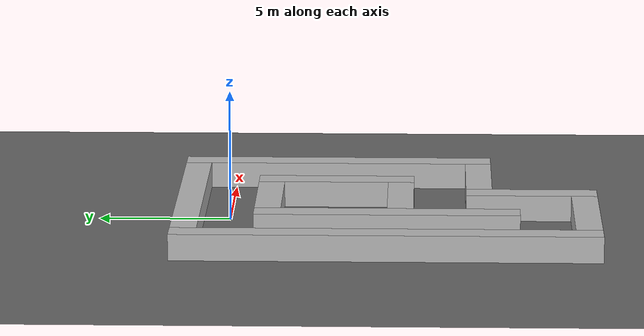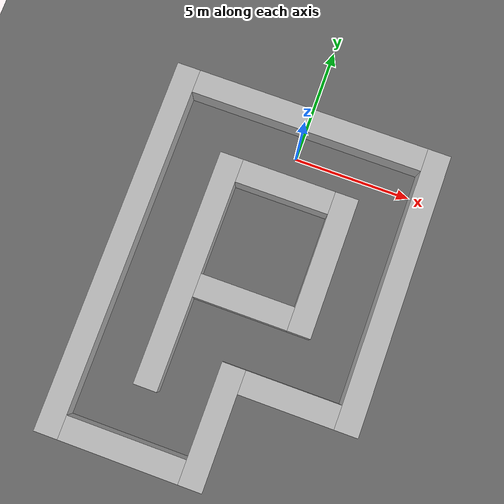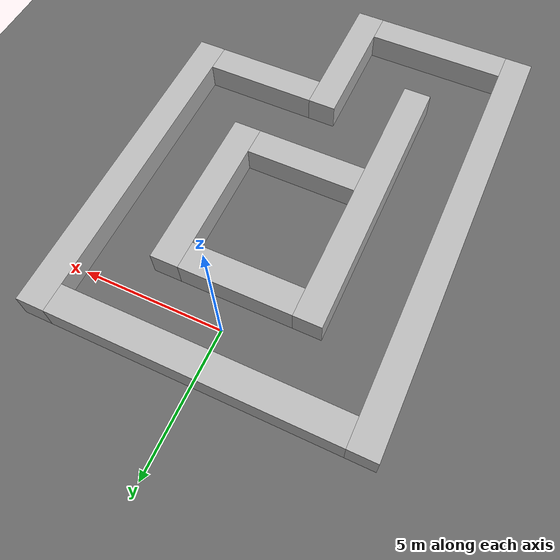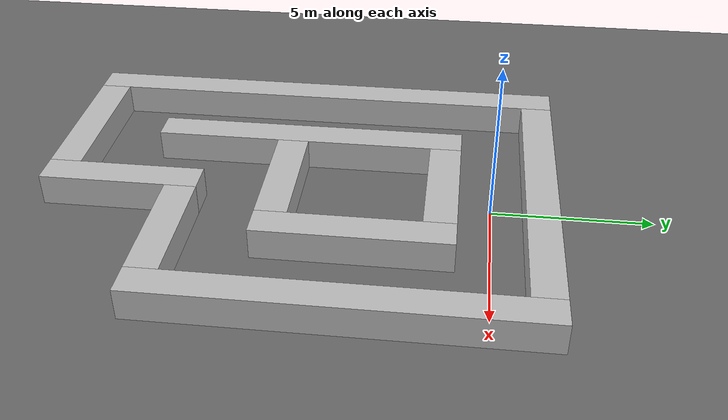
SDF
<?xml version="1.0" ?>
<sdf version="1.8">
  <world name="default">

    <plugin filename="gz-sim-physics-system"           name="gz::sim::systems::Physics"/>
    <plugin filename="gz-sim-user-commands-system"     name="gz::sim::systems::UserCommands"/>
    <plugin filename="gz-sim-scene-broadcaster-system" name="gz::sim::systems::SceneBroadcaster"/>
    <plugin filename="gz-sim-contact-system"           name="gz::sim::systems::Contact"/>
    <plugin filename="gz-sim-sensors-system"           name="gz::sim::systems::Sensors">
      <render_engine>ogre2</render_engine>
    </plugin>

    <light type="directional" name="sun">
      <cast_shadows>true</cast_shadows>
      <pose>0 0 10 0 0 0</pose>
      <diffuse>0.8 0.8 0.8 1</diffuse>
      <specular>0.2 0.2 0.2 1</specular>
      <direction>-0.5 0.1 -0.9</direction>
    </light>

    <model name="ground_plane">
      <static>true</static>
      <link name="link">
        <collision name="collision">
          <geometry><plane><normal>0 0 1</normal><size>100 100</size></plane></geometry>
        </collision>
        <visual name="visual">
          <geometry><plane><normal>0 0 1</normal><size>100 100</size></plane></geometry>
          <material><diffuse>0.4 0.4 0.4 1</diffuse></material>
        </visual>
      </link>
    </model>

    <model name='maze'>
      <static>true</static>
      <link name='maze_body'>
        <visual name='wall_0_visual'>
          <pose>0 1.5 0.5 0 0 0</pose>
          <geometry><box><size>10 1 1</size></box></geometry>
        </visual>
        <collision name='wall_0_collision'>
          <pose>0 1.5 0.5 0 0 0</pose>
          <geometry><box><size>10 1 1</size></box></geometry>
        </collision>

        <visual name='wall_1_visual'>
          <pose>0 -1.5 0.5 0 0 0</pose>
          <geometry><box><size>4 1 1</size></box></geometry>
        </visual>
        <collision name='wall_1_collision'>
          <pose>0 -1.5 0.5 0 0 0</pose>
          <geometry><box><size>4 1 1</size></box></geometry>
        </collision>

        <visual name='wall_2_visual'>
          <pose>2.5 -4 0.5 0 0 0</pose>
          <geometry><box><size>1 6 1</size></box></geometry>
        </visual>
        <collision name='wall_2_collision'>
          <pose>2.5 -4 0.5 0 0 0</pose>
          <geometry><box><size>1 6 1</size></box></geometry>
        </collision>

        <visual name='wall_3_visual'>
          <pose>-2.5 -6 0.5 0 0 0</pose>
          <geometry><box><size>1 10 1</size></box></geometry>
        </visual>
        <collision name='wall_3_collision'>
          <pose>-2.5 -6 0.5 0 0 0</pose>
          <geometry><box><size>1 10 1</size></box></geometry>
        </collision>

        <visual name='wall_4_visual'>
          <pose>0 -6.5 0.5 0 0 0</pose>
          <geometry><box><size>4 1 1</size></box></geometry>
        </visual>
        <collision name='wall_4_collision'>
          <pose>0 -6.5 0.5 0 0 0</pose>
          <geometry><box><size>4 1 1</size></box></geometry>
        </collision>

        <visual name='wall_5_visual'>
          <pose>-5.5 -6 0.5 0 0 0</pose>
          <geometry><box><size>1 16 1</size></box></geometry>
        </visual>
        <collision name='wall_5_collision'>
          <pose>-5.5 -6 0.5 0 0 0</pose>
          <geometry><box><size>1 16 1</size></box></geometry>
        </collision>

        <visual name='wall_6_visual'>
          <pose>5.5 -4 0.5 0 0 0</pose>
          <geometry><box><size>1 12 1</size></box></geometry>
        </visual>
        <collision name='wall_6_collision'>
          <pose>5.5 -4 0.5 0 0 0</pose>
          <geometry><box><size>1 12 1</size></box></geometry>
        </collision>

        <visual name='wall_7_visual'>
          <pose>3 -9.5 0.5 0 0 0</pose>
          <geometry><box><size>4 1 1</size></box></geometry>
        </visual>
        <collision name='wall_7_collision'>
          <pose>3 -9.5 0.5 0 0 0</pose>
          <geometry><box><size>4 1 1</size></box></geometry>
        </collision>

        <visual name='wall_8_visual'>
          <pose>-2.5 -13.5 0.5 0 0 0</pose>
          <geometry><box><size>5 1 1</size></box></geometry>
        </visual>
        <collision name='wall_8_collision'>
          <pose>-2.5 -13.5 0.5 0 0 0</pose>
          <geometry><box><size>5 1 1</size></box></geometry>
        </collision>

        <visual name='wall_10_visual'>
          <pose>0.5 -11.5 0.5 0 0 0</pose>
          <geometry><box><size>1 5 1</size></box></geometry>
        </visual>
        <collision name='wall_10_collision'>
          <pose>0.5 -11.5 0.5 0 0 0</pose>
          <geometry><box><size>1 5 1</size></box></geometry>
        </collision>

        <material><diffuse>0.1 0.1 0.1 1</diffuse></material>
      </link>
    </model>
  </world>
</sdf>
